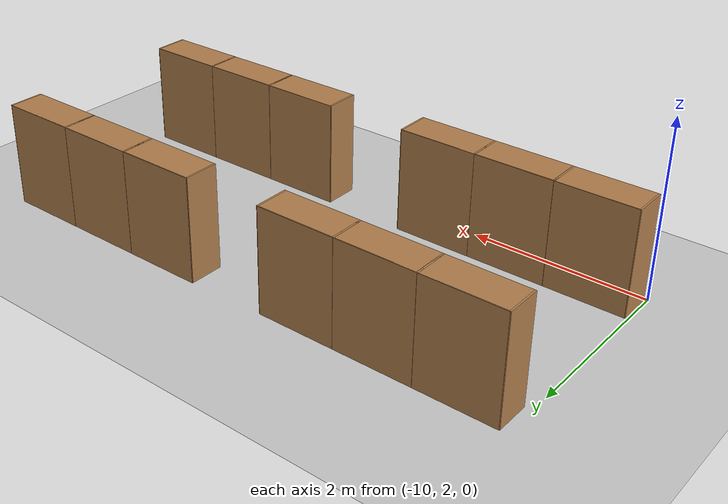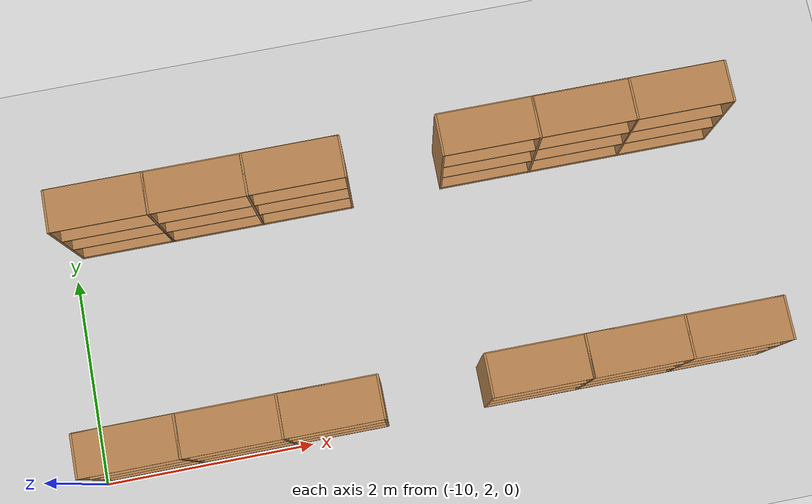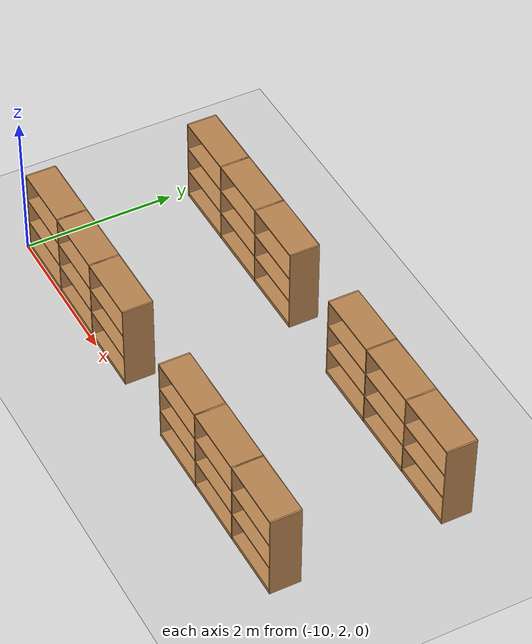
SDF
<sdf version="1.6">
 <world name="default">
  <model name="Bookself-3_0_clone_4">
   <model name="bookshelf_0">
    <static>1</static>
    <link name="link">
     <inertial><mass>1</mass></inertial>
     <collision name="back">
      <pose>0 0.005 0.6 0 -0 0</pose>
      <geometry><box><size>0.9 0.01 1.2</size></box></geometry>
     </collision>
     <visual name="visual1">
      <pose>0 0.005 0.6 0 -0 0</pose>
      <geometry><box><size>0.9 0.01 1.2</size></box></geometry>
      <material>
       <script><uri>file://media/materials/scripts/gazebo.material</uri><name>Gazebo/Wood</name></script>
      </material>
     </visual>
     <collision name="left_side">
      <pose>0.45 -0.195 0.6 0 -0 0</pose>
      <geometry><box><size>0.02 0.4 1.2</size></box></geometry>
     </collision>
     <visual name="visual2">
      <pose>0.45 -0.195 0.6 0 -0 0</pose>
      <geometry><box><size>0.02 0.4 1.2</size></box></geometry>
      <material>
       <script><uri>file://media/materials/scripts/gazebo.material</uri><name>Gazebo/Wood</name></script>
      </material>
     </visual>
     <collision name="right_side">
      <pose>-0.45 -0.195 0.6 0 -0 0</pose>
      <geometry><box><size>0.02 0.4 1.2</size></box></geometry>
     </collision>
     <visual name="visual3">
      <pose>-0.45 -0.195 0.6 0 -0 0</pose>
      <geometry><box><size>0.02 0.4 1.2</size></box></geometry>
      <material>
       <script><uri>file://media/materials/scripts/gazebo.material</uri><name>Gazebo/Wood</name></script>
      </material>
     </visual>
     <collision name="bottom">
      <pose>0 -0.195 0.03 0 -0 0</pose>
      <geometry><box><size>0.88 0.4 0.06</size></box></geometry>
     </collision>
     <visual name="visual4">
      <pose>0 -0.195 0.03 0 -0 0</pose>
      <geometry><box><size>0.88 0.4 0.06</size></box></geometry>
      <material>
       <script><uri>file://media/materials/scripts/gazebo.material</uri><name>Gazebo/Wood</name></script>
      </material>
     </visual>
     <collision name="top">
      <pose>0 -0.195 1.19 0 -0 0</pose>
      <geometry><box><size>0.88 0.4 0.02</size></box></geometry>
     </collision>
     <visual name="visual5">
      <pose>0 -0.195 1.19 0 -0 0</pose>
      <geometry><box><size>0.88 0.4 0.02</size></box></geometry>
      <material>
       <script><uri>file://media/materials/scripts/gazebo.material</uri><name>Gazebo/Wood</name></script>
      </material>
     </visual>
     <collision name="low_shelf">
      <pose>0 -0.195 0.43 0 -0 0</pose>
      <geometry><box><size>0.88 0.4 0.02</size></box></geometry>
     </collision>
     <visual name="visual6">
      <pose>0 -0.195 0.43 0 -0 0</pose>
      <geometry><box><size>0.88 0.4 0.02</size></box></geometry>
      <material>
       <script><uri>file://media/materials/scripts/gazebo.material</uri><name>Gazebo/Wood</name></script>
      </material>
     </visual>
     <collision name="high_shelf">
      <pose>0 -0.195 0.8 0 -0 0</pose>
      <geometry><box><size>0.88 0.4 0.02</size></box></geometry>
     </collision>
     <visual name="visual7">
      <pose>0 -0.195 0.8 0 -0 0</pose>
      <geometry><box><size>0.88 0.4 0.02</size></box></geometry>
      <material>
       <script><uri>file://media/materials/scripts/gazebo.material</uri><name>Gazebo/Wood</name></script>
      </material>
     </visual>
    </link>
    <pose>-0.903039 0 0 0 -0 0</pose>
   </model>
   <model name="bookshelf_1">
    <static>1</static>
    <link name="link">
     <inertial><mass>1</mass></inertial>
     <collision name="back">
      <pose>0 0.005 0.6 0 -0 0</pose>
      <geometry><box><size>0.9 0.01 1.2</size></box></geometry>
     </collision>
     <visual name="visual1">
      <pose>0 0.005 0.6 0 -0 0</pose>
      <geometry><box><size>0.9 0.01 1.2</size></box></geometry>
      <material>
       <script><uri>file://media/materials/scripts/gazebo.material</uri><name>Gazebo/Wood</name></script>
      </material>
     </visual>
     <collision name="left_side">
      <pose>0.45 -0.195 0.6 0 -0 0</pose>
      <geometry><box><size>0.02 0.4 1.2</size></box></geometry>
     </collision>
     <visual name="visual2">
      <pose>0.45 -0.195 0.6 0 -0 0</pose>
      <geometry><box><size>0.02 0.4 1.2</size></box></geometry>
      <material>
       <script><uri>file://media/materials/scripts/gazebo.material</uri><name>Gazebo/Wood</name></script>
      </material>
     </visual>
     <collision name="right_side">
      <pose>-0.45 -0.195 0.6 0 -0 0</pose>
      <geometry><box><size>0.02 0.4 1.2</size></box></geometry>
     </collision>
     <visual name="visual3">
      <pose>-0.45 -0.195 0.6 0 -0 0</pose>
      <geometry><box><size>0.02 0.4 1.2</size></box></geometry>
      <material>
       <script><uri>file://media/materials/scripts/gazebo.material</uri><name>Gazebo/Wood</name></script>
      </material>
     </visual>
     <collision name="bottom">
      <pose>0 -0.195 0.03 0 -0 0</pose>
      <geometry><box><size>0.88 0.4 0.06</size></box></geometry>
     </collision>
     <visual name="visual4">
      <pose>0 -0.195 0.03 0 -0 0</pose>
      <geometry><box><size>0.88 0.4 0.06</size></box></geometry>
      <material>
       <script><uri>file://media/materials/scripts/gazebo.material</uri><name>Gazebo/Wood</name></script>
      </material>
     </visual>
     <collision name="top">
      <pose>0 -0.195 1.19 0 -0 0</pose>
      <geometry><box><size>0.88 0.4 0.02</size></box></geometry>
     </collision>
     <visual name="visual5">
      <pose>0 -0.195 1.19 0 -0 0</pose>
      <geometry><box><size>0.88 0.4 0.02</size></box></geometry>
      <material>
       <script><uri>file://media/materials/scripts/gazebo.material</uri><name>Gazebo/Wood</name></script>
      </material>
     </visual>
     <collision name="low_shelf">
      <pose>0 -0.195 0.43 0 -0 0</pose>
      <geometry><box><size>0.88 0.4 0.02</size></box></geometry>
     </collision>
     <visual name="visual6">
      <pose>0 -0.195 0.43 0 -0 0</pose>
      <geometry><box><size>0.88 0.4 0.02</size></box></geometry>
      <material>
       <script><uri>file://media/materials/scripts/gazebo.material</uri><name>Gazebo/Wood</name></script>
      </material>
     </visual>
     <collision name="high_shelf">
      <pose>0 -0.195 0.8 0 -0 0</pose>
      <geometry><box><size>0.88 0.4 0.02</size></box></geometry>
     </collision>
     <visual name="visual7">
      <pose>0 -0.195 0.8 0 -0 0</pose>
      <geometry><box><size>0.88 0.4 0.02</size></box></geometry>
      <material>
       <script><uri>file://media/materials/scripts/gazebo.material</uri><name>Gazebo/Wood</name></script>
      </material>
     </visual>
    </link>
    <pose>0.000535 0 0 0 -0 0</pose>
   </model>
   <model name="bookshelf_1_clone">
    <static>1</static>
    <link name="link">
     <inertial><mass>1</mass></inertial>
     <collision name="back">
      <pose>0 0.005 0.6 0 -0 0</pose>
      <geometry><box><size>0.9 0.01 1.2</size></box></geometry>
     </collision>
     <visual name="visual1">
      <pose>0 0.005 0.6 0 -0 0</pose>
      <geometry><box><size>0.9 0.01 1.2</size></box></geometry>
      <material>
       <script><uri>file://media/materials/scripts/gazebo.material</uri><name>Gazebo/Wood</name></script>
      </material>
     </visual>
     <collision name="left_side">
      <pose>0.45 -0.195 0.6 0 -0 0</pose>
      <geometry><box><size>0.02 0.4 1.2</size></box></geometry>
     </collision>
     <visual name="visual2">
      <pose>0.45 -0.195 0.6 0 -0 0</pose>
      <geometry><box><size>0.02 0.4 1.2</size></box></geometry>
      <material>
       <script><uri>file://media/materials/scripts/gazebo.material</uri><name>Gazebo/Wood</name></script>
      </material>
     </visual>
     <collision name="right_side">
      <pose>-0.45 -0.195 0.6 0 -0 0</pose>
      <geometry><box><size>0.02 0.4 1.2</size></box></geometry>
     </collision>
     <visual name="visual3">
      <pose>-0.45 -0.195 0.6 0 -0 0</pose>
      <geometry><box><size>0.02 0.4 1.2</size></box></geometry>
      <material>
       <script><uri>file://media/materials/scripts/gazebo.material</uri><name>Gazebo/Wood</name></script>
      </material>
     </visual>
     <collision name="bottom">
      <pose>0 -0.195 0.03 0 -0 0</pose>
      <geometry><box><size>0.88 0.4 0.06</size></box></geometry>
     </collision>
     <visual name="visual4">
      <pose>0 -0.195 0.03 0 -0 0</pose>
      <geometry><box><size>0.88 0.4 0.06</size></box></geometry>
      <material>
       <script><uri>file://media/materials/scripts/gazebo.material</uri><name>Gazebo/Wood</name></script>
      </material>
     </visual>
     <collision name="top">
      <pose>0 -0.195 1.19 0 -0 0</pose>
      <geometry><box><size>0.88 0.4 0.02</size></box></geometry>
     </collision>
     <visual name="visual5">
      <pose>0 -0.195 1.19 0 -0 0</pose>
      <geometry><box><size>0.88 0.4 0.02</size></box></geometry>
      <material>
       <script><uri>file://media/materials/scripts/gazebo.material</uri><name>Gazebo/Wood</name></script>
      </material>
     </visual>
     <collision name="low_shelf">
      <pose>0 -0.195 0.43 0 -0 0</pose>
      <geometry><box><size>0.88 0.4 0.02</size></box></geometry>
     </collision>
     <visual name="visual6">
      <pose>0 -0.195 0.43 0 -0 0</pose>
      <geometry><box><size>0.88 0.4 0.02</size></box></geometry>
      <material>
       <script><uri>file://media/materials/scripts/gazebo.material</uri><name>Gazebo/Wood</name></script>
      </material>
     </visual>
     <collision name="high_shelf">
      <pose>0 -0.195 0.8 0 -0 0</pose>
      <geometry><box><size>0.88 0.4 0.02</size></box></geometry>
     </collision>
     <visual name="visual7">
      <pose>0 -0.195 0.8 0 -0 0</pose>
      <geometry><box><size>0.88 0.4 0.02</size></box></geometry>
      <material>
       <script><uri>file://media/materials/scripts/gazebo.material</uri><name>Gazebo/Wood</name></script>
      </material>
     </visual>
    </link>
    <pose>0.902502 0 0 0 -0 0</pose>
   </model>
   <static>1</static>
   <pose>-4.94744 4.64614 0 0 -0 0</pose>
  </model>
  <model name="Bookself-3_0_clone_5">
   <model name="bookshelf_0">
    <static>1</static>
    <link name="link">
     <inertial><mass>1</mass></inertial>
     <collision name="back">
      <pose>0 0.005 0.6 0 -0 0</pose>
      <geometry><box><size>0.9 0.01 1.2</size></box></geometry>
     </collision>
     <visual name="visual1">
      <pose>0 0.005 0.6 0 -0 0</pose>
      <geometry><box><size>0.9 0.01 1.2</size></box></geometry>
      <material>
       <script><uri>file://media/materials/scripts/gazebo.material</uri><name>Gazebo/Wood</name></script>
      </material>
     </visual>
     <collision name="left_side">
      <pose>0.45 -0.195 0.6 0 -0 0</pose>
      <geometry><box><size>0.02 0.4 1.2</size></box></geometry>
     </collision>
     <visual name="visual2">
      <pose>0.45 -0.195 0.6 0 -0 0</pose>
      <geometry><box><size>0.02 0.4 1.2</size></box></geometry>
      <material>
       <script><uri>file://media/materials/scripts/gazebo.material</uri><name>Gazebo/Wood</name></script>
      </material>
     </visual>
     <collision name="right_side">
      <pose>-0.45 -0.195 0.6 0 -0 0</pose>
      <geometry><box><size>0.02 0.4 1.2</size></box></geometry>
     </collision>
     <visual name="visual3">
      <pose>-0.45 -0.195 0.6 0 -0 0</pose>
      <geometry><box><size>0.02 0.4 1.2</size></box></geometry>
      <material>
       <script><uri>file://media/materials/scripts/gazebo.material</uri><name>Gazebo/Wood</name></script>
      </material>
     </visual>
     <collision name="bottom">
      <pose>0 -0.195 0.03 0 -0 0</pose>
      <geometry><box><size>0.88 0.4 0.06</size></box></geometry>
     </collision>
     <visual name="visual4">
      <pose>0 -0.195 0.03 0 -0 0</pose>
      <geometry><box><size>0.88 0.4 0.06</size></box></geometry>
      <material>
       <script><uri>file://media/materials/scripts/gazebo.material</uri><name>Gazebo/Wood</name></script>
      </material>
     </visual>
     <collision name="top">
      <pose>0 -0.195 1.19 0 -0 0</pose>
      <geometry><box><size>0.88 0.4 0.02</size></box></geometry>
     </collision>
     <visual name="visual5">
      <pose>0 -0.195 1.19 0 -0 0</pose>
      <geometry><box><size>0.88 0.4 0.02</size></box></geometry>
      <material>
       <script><uri>file://media/materials/scripts/gazebo.material</uri><name>Gazebo/Wood</name></script>
      </material>
     </visual>
     <collision name="low_shelf">
      <pose>0 -0.195 0.43 0 -0 0</pose>
      <geometry><box><size>0.88 0.4 0.02</size></box></geometry>
     </collision>
     <visual name="visual6">
      <pose>0 -0.195 0.43 0 -0 0</pose>
      <geometry><box><size>0.88 0.4 0.02</size></box></geometry>
      <material>
       <script><uri>file://media/materials/scripts/gazebo.material</uri><name>Gazebo/Wood</name></script>
      </material>
     </visual>
     <collision name="high_shelf">
      <pose>0 -0.195 0.8 0 -0 0</pose>
      <geometry><box><size>0.88 0.4 0.02</size></box></geometry>
     </collision>
     <visual name="visual7">
      <pose>0 -0.195 0.8 0 -0 0</pose>
      <geometry><box><size>0.88 0.4 0.02</size></box></geometry>
      <material>
       <script><uri>file://media/materials/scripts/gazebo.material</uri><name>Gazebo/Wood</name></script>
      </material>
     </visual>
    </link>
    <pose>-0.903039 0 0 0 -0 0</pose>
   </model>
   <model name="bookshelf_1">
    <static>1</static>
    <link name="link">
     <inertial><mass>1</mass></inertial>
     <collision name="back">
      <pose>0 0.005 0.6 0 -0 0</pose>
      <geometry><box><size>0.9 0.01 1.2</size></box></geometry>
     </collision>
     <visual name="visual1">
      <pose>0 0.005 0.6 0 -0 0</pose>
      <geometry><box><size>0.9 0.01 1.2</size></box></geometry>
      <material>
       <script><uri>file://media/materials/scripts/gazebo.material</uri><name>Gazebo/Wood</name></script>
      </material>
     </visual>
     <collision name="left_side">
      <pose>0.45 -0.195 0.6 0 -0 0</pose>
      <geometry><box><size>0.02 0.4 1.2</size></box></geometry>
     </collision>
     <visual name="visual2">
      <pose>0.45 -0.195 0.6 0 -0 0</pose>
      <geometry><box><size>0.02 0.4 1.2</size></box></geometry>
      <material>
       <script><uri>file://media/materials/scripts/gazebo.material</uri><name>Gazebo/Wood</name></script>
      </material>
     </visual>
     <collision name="right_side">
      <pose>-0.45 -0.195 0.6 0 -0 0</pose>
      <geometry><box><size>0.02 0.4 1.2</size></box></geometry>
     </collision>
     <visual name="visual3">
      <pose>-0.45 -0.195 0.6 0 -0 0</pose>
      <geometry><box><size>0.02 0.4 1.2</size></box></geometry>
      <material>
       <script><uri>file://media/materials/scripts/gazebo.material</uri><name>Gazebo/Wood</name></script>
      </material>
     </visual>
     <collision name="bottom">
      <pose>0 -0.195 0.03 0 -0 0</pose>
      <geometry><box><size>0.88 0.4 0.06</size></box></geometry>
     </collision>
     <visual name="visual4">
      <pose>0 -0.195 0.03 0 -0 0</pose>
      <geometry><box><size>0.88 0.4 0.06</size></box></geometry>
      <material>
       <script><uri>file://media/materials/scripts/gazebo.material</uri><name>Gazebo/Wood</name></script>
      </material>
     </visual>
     <collision name="top">
      <pose>0 -0.195 1.19 0 -0 0</pose>
      <geometry><box><size>0.88 0.4 0.02</size></box></geometry>
     </collision>
     <visual name="visual5">
      <pose>0 -0.195 1.19 0 -0 0</pose>
      <geometry><box><size>0.88 0.4 0.02</size></box></geometry>
      <material>
       <script><uri>file://media/materials/scripts/gazebo.material</uri><name>Gazebo/Wood</name></script>
      </material>
     </visual>
     <collision name="low_shelf">
      <pose>0 -0.195 0.43 0 -0 0</pose>
      <geometry><box><size>0.88 0.4 0.02</size></box></geometry>
     </collision>
     <visual name="visual6">
      <pose>0 -0.195 0.43 0 -0 0</pose>
      <geometry><box><size>0.88 0.4 0.02</size></box></geometry>
      <material>
       <script><uri>file://media/materials/scripts/gazebo.material</uri><name>Gazebo/Wood</name></script>
      </material>
     </visual>
     <collision name="high_shelf">
      <pose>0 -0.195 0.8 0 -0 0</pose>
      <geometry><box><size>0.88 0.4 0.02</size></box></geometry>
     </collision>
     <visual name="visual7">
      <pose>0 -0.195 0.8 0 -0 0</pose>
      <geometry><box><size>0.88 0.4 0.02</size></box></geometry>
      <material>
       <script><uri>file://media/materials/scripts/gazebo.material</uri><name>Gazebo/Wood</name></script>
      </material>
     </visual>
    </link>
    <pose>0.000535 0 0 0 -0 0</pose>
   </model>
   <model name="bookshelf_1_clone">
    <static>1</static>
    <link name="link">
     <inertial><mass>1</mass></inertial>
     <collision name="back">
      <pose>0 0.005 0.6 0 -0 0</pose>
      <geometry><box><size>0.9 0.01 1.2</size></box></geometry>
     </collision>
     <visual name="visual1">
      <pose>0 0.005 0.6 0 -0 0</pose>
      <geometry><box><size>0.9 0.01 1.2</size></box></geometry>
      <material>
       <script><uri>file://media/materials/scripts/gazebo.material</uri><name>Gazebo/Wood</name></script>
      </material>
     </visual>
     <collision name="left_side">
      <pose>0.45 -0.195 0.6 0 -0 0</pose>
      <geometry><box><size>0.02 0.4 1.2</size></box></geometry>
     </collision>
     <visual name="visual2">
      <pose>0.45 -0.195 0.6 0 -0 0</pose>
      <geometry><box><size>0.02 0.4 1.2</size></box></geometry>
      <material>
       <script><uri>file://media/materials/scripts/gazebo.material</uri><name>Gazebo/Wood</name></script>
      </material>
     </visual>
     <collision name="right_side">
      <pose>-0.45 -0.195 0.6 0 -0 0</pose>
      <geometry><box><size>0.02 0.4 1.2</size></box></geometry>
     </collision>
     <visual name="visual3">
      <pose>-0.45 -0.195 0.6 0 -0 0</pose>
      <geometry><box><size>0.02 0.4 1.2</size></box></geometry>
      <material>
       <script><uri>file://media/materials/scripts/gazebo.material</uri><name>Gazebo/Wood</name></script>
      </material>
     </visual>
     <collision name="bottom">
      <pose>0 -0.195 0.03 0 -0 0</pose>
      <geometry><box><size>0.88 0.4 0.06</size></box></geometry>
     </collision>
     <visual name="visual4">
      <pose>0 -0.195 0.03 0 -0 0</pose>
      <geometry><box><size>0.88 0.4 0.06</size></box></geometry>
      <material>
       <script><uri>file://media/materials/scripts/gazebo.material</uri><name>Gazebo/Wood</name></script>
      </material>
     </visual>
     <collision name="top">
      <pose>0 -0.195 1.19 0 -0 0</pose>
      <geometry><box><size>0.88 0.4 0.02</size></box></geometry>
     </collision>
     <visual name="visual5">
      <pose>0 -0.195 1.19 0 -0 0</pose>
      <geometry><box><size>0.88 0.4 0.02</size></box></geometry>
      <material>
       <script><uri>file://media/materials/scripts/gazebo.material</uri><name>Gazebo/Wood</name></script>
      </material>
     </visual>
     <collision name="low_shelf">
      <pose>0 -0.195 0.43 0 -0 0</pose>
      <geometry><box><size>0.88 0.4 0.02</size></box></geometry>
     </collision>
     <visual name="visual6">
      <pose>0 -0.195 0.43 0 -0 0</pose>
      <geometry><box><size>0.88 0.4 0.02</size></box></geometry>
      <material>
       <script><uri>file://media/materials/scripts/gazebo.material</uri><name>Gazebo/Wood</name></script>
      </material>
     </visual>
     <collision name="high_shelf">
      <pose>0 -0.195 0.8 0 -0 0</pose>
      <geometry><box><size>0.88 0.4 0.02</size></box></geometry>
     </collision>
     <visual name="visual7">
      <pose>0 -0.195 0.8 0 -0 0</pose>
      <geometry><box><size>0.88 0.4 0.02</size></box></geometry>
      <material>
       <script><uri>file://media/materials/scripts/gazebo.material</uri><name>Gazebo/Wood</name></script>
      </material>
     </visual>
    </link>
    <pose>0.902502 0 0 0 -0 0</pose>
   </model>
   <static>1</static>
   <pose>-4.94744 2.42399 0 0 -0 0</pose>
  </model>
  <model name="Bookself-3_0_clone_6">
   <model name="bookshelf_0">
    <static>1</static>
    <link name="link">
     <inertial><mass>1</mass></inertial>
     <collision name="back">
      <pose>0 0.005 0.6 0 -0 0</pose>
      <geometry><box><size>0.9 0.01 1.2</size></box></geometry>
     </collision>
     <visual name="visual1">
      <pose>0 0.005 0.6 0 -0 0</pose>
      <geometry><box><size>0.9 0.01 1.2</size></box></geometry>
      <material>
       <script><uri>file://media/materials/scripts/gazebo.material</uri><name>Gazebo/Wood</name></script>
      </material>
     </visual>
     <collision name="left_side">
      <pose>0.45 -0.195 0.6 0 -0 0</pose>
      <geometry><box><size>0.02 0.4 1.2</size></box></geometry>
     </collision>
     <visual name="visual2">
      <pose>0.45 -0.195 0.6 0 -0 0</pose>
      <geometry><box><size>0.02 0.4 1.2</size></box></geometry>
      <material>
       <script><uri>file://media/materials/scripts/gazebo.material</uri><name>Gazebo/Wood</name></script>
      </material>
     </visual>
     <collision name="right_side">
      <pose>-0.45 -0.195 0.6 0 -0 0</pose>
      <geometry><box><size>0.02 0.4 1.2</size></box></geometry>
     </collision>
     <visual name="visual3">
      <pose>-0.45 -0.195 0.6 0 -0 0</pose>
      <geometry><box><size>0.02 0.4 1.2</size></box></geometry>
      <material>
       <script><uri>file://media/materials/scripts/gazebo.material</uri><name>Gazebo/Wood</name></script>
      </material>
     </visual>
     <collision name="bottom">
      <pose>0 -0.195 0.03 0 -0 0</pose>
      <geometry><box><size>0.88 0.4 0.06</size></box></geometry>
     </collision>
     <visual name="visual4">
      <pose>0 -0.195 0.03 0 -0 0</pose>
      <geometry><box><size>0.88 0.4 0.06</size></box></geometry>
      <material>
       <script><uri>file://media/materials/scripts/gazebo.material</uri><name>Gazebo/Wood</name></script>
      </material>
     </visual>
     <collision name="top">
      <pose>0 -0.195 1.19 0 -0 0</pose>
      <geometry><box><size>0.88 0.4 0.02</size></box></geometry>
     </collision>
     <visual name="visual5">
      <pose>0 -0.195 1.19 0 -0 0</pose>
      <geometry><box><size>0.88 0.4 0.02</size></box></geometry>
      <material>
       <script><uri>file://media/materials/scripts/gazebo.material</uri><name>Gazebo/Wood</name></script>
      </material>
     </visual>
     <collision name="low_shelf">
      <pose>0 -0.195 0.43 0 -0 0</pose>
      <geometry><box><size>0.88 0.4 0.02</size></box></geometry>
     </collision>
     <visual name="visual6">
      <pose>0 -0.195 0.43 0 -0 0</pose>
      <geometry><box><size>0.88 0.4 0.02</size></box></geometry>
      <material>
       <script><uri>file://media/materials/scripts/gazebo.material</uri><name>Gazebo/Wood</name></script>
      </material>
     </visual>
     <collision name="high_shelf">
      <pose>0 -0.195 0.8 0 -0 0</pose>
      <geometry><box><size>0.88 0.4 0.02</size></box></geometry>
     </collision>
     <visual name="visual7">
      <pose>0 -0.195 0.8 0 -0 0</pose>
      <geometry><box><size>0.88 0.4 0.02</size></box></geometry>
      <material>
       <script><uri>file://media/materials/scripts/gazebo.material</uri><name>Gazebo/Wood</name></script>
      </material>
     </visual>
    </link>
    <pose>-0.903039 0 0 0 -0 0</pose>
   </model>
   <model name="bookshelf_1">
    <static>1</static>
    <link name="link">
     <inertial><mass>1</mass></inertial>
     <collision name="back">
      <pose>0 0.005 0.6 0 -0 0</pose>
      <geometry><box><size>0.9 0.01 1.2</size></box></geometry>
     </collision>
     <visual name="visual1">
      <pose>0 0.005 0.6 0 -0 0</pose>
      <geometry><box><size>0.9 0.01 1.2</size></box></geometry>
      <material>
       <script><uri>file://media/materials/scripts/gazebo.material</uri><name>Gazebo/Wood</name></script>
      </material>
     </visual>
     <collision name="left_side">
      <pose>0.45 -0.195 0.6 0 -0 0</pose>
      <geometry><box><size>0.02 0.4 1.2</size></box></geometry>
     </collision>
     <visual name="visual2">
      <pose>0.45 -0.195 0.6 0 -0 0</pose>
      <geometry><box><size>0.02 0.4 1.2</size></box></geometry>
      <material>
       <script><uri>file://media/materials/scripts/gazebo.material</uri><name>Gazebo/Wood</name></script>
      </material>
     </visual>
     <collision name="right_side">
      <pose>-0.45 -0.195 0.6 0 -0 0</pose>
      <geometry><box><size>0.02 0.4 1.2</size></box></geometry>
     </collision>
     <visual name="visual3">
      <pose>-0.45 -0.195 0.6 0 -0 0</pose>
      <geometry><box><size>0.02 0.4 1.2</size></box></geometry>
      <material>
       <script><uri>file://media/materials/scripts/gazebo.material</uri><name>Gazebo/Wood</name></script>
      </material>
     </visual>
     <collision name="bottom">
      <pose>0 -0.195 0.03 0 -0 0</pose>
      <geometry><box><size>0.88 0.4 0.06</size></box></geometry>
     </collision>
     <visual name="visual4">
      <pose>0 -0.195 0.03 0 -0 0</pose>
      <geometry><box><size>0.88 0.4 0.06</size></box></geometry>
      <material>
       <script><uri>file://media/materials/scripts/gazebo.material</uri><name>Gazebo/Wood</name></script>
      </material>
     </visual>
     <collision name="top">
      <pose>0 -0.195 1.19 0 -0 0</pose>
      <geometry><box><size>0.88 0.4 0.02</size></box></geometry>
     </collision>
     <visual name="visual5">
      <pose>0 -0.195 1.19 0 -0 0</pose>
      <geometry><box><size>0.88 0.4 0.02</size></box></geometry>
      <material>
       <script><uri>file://media/materials/scripts/gazebo.material</uri><name>Gazebo/Wood</name></script>
      </material>
     </visual>
     <collision name="low_shelf">
      <pose>0 -0.195 0.43 0 -0 0</pose>
      <geometry><box><size>0.88 0.4 0.02</size></box></geometry>
     </collision>
     <visual name="visual6">
      <pose>0 -0.195 0.43 0 -0 0</pose>
      <geometry><box><size>0.88 0.4 0.02</size></box></geometry>
      <material>
       <script><uri>file://media/materials/scripts/gazebo.material</uri><name>Gazebo/Wood</name></script>
      </material>
     </visual>
     <collision name="high_shelf">
      <pose>0 -0.195 0.8 0 -0 0</pose>
      <geometry><box><size>0.88 0.4 0.02</size></box></geometry>
     </collision>
     <visual name="visual7">
      <pose>0 -0.195 0.8 0 -0 0</pose>
      <geometry><box><size>0.88 0.4 0.02</size></box></geometry>
      <material>
       <script><uri>file://media/materials/scripts/gazebo.material</uri><name>Gazebo/Wood</name></script>
      </material>
     </visual>
    </link>
    <pose>0.000535 0 0 0 -0 0</pose>
   </model>
   <model name="bookshelf_1_clone">
    <static>1</static>
    <link name="link">
     <inertial><mass>1</mass></inertial>
     <collision name="back">
      <pose>0 0.005 0.6 0 -0 0</pose>
      <geometry><box><size>0.9 0.01 1.2</size></box></geometry>
     </collision>
     <visual name="visual1">
      <pose>0 0.005 0.6 0 -0 0</pose>
      <geometry><box><size>0.9 0.01 1.2</size></box></geometry>
      <material>
       <script><uri>file://media/materials/scripts/gazebo.material</uri><name>Gazebo/Wood</name></script>
      </material>
     </visual>
     <collision name="left_side">
      <pose>0.45 -0.195 0.6 0 -0 0</pose>
      <geometry><box><size>0.02 0.4 1.2</size></box></geometry>
     </collision>
     <visual name="visual2">
      <pose>0.45 -0.195 0.6 0 -0 0</pose>
      <geometry><box><size>0.02 0.4 1.2</size></box></geometry>
      <material>
       <script><uri>file://media/materials/scripts/gazebo.material</uri><name>Gazebo/Wood</name></script>
      </material>
     </visual>
     <collision name="right_side">
      <pose>-0.45 -0.195 0.6 0 -0 0</pose>
      <geometry><box><size>0.02 0.4 1.2</size></box></geometry>
     </collision>
     <visual name="visual3">
      <pose>-0.45 -0.195 0.6 0 -0 0</pose>
      <geometry><box><size>0.02 0.4 1.2</size></box></geometry>
      <material>
       <script><uri>file://media/materials/scripts/gazebo.material</uri><name>Gazebo/Wood</name></script>
      </material>
     </visual>
     <collision name="bottom">
      <pose>0 -0.195 0.03 0 -0 0</pose>
      <geometry><box><size>0.88 0.4 0.06</size></box></geometry>
     </collision>
     <visual name="visual4">
      <pose>0 -0.195 0.03 0 -0 0</pose>
      <geometry><box><size>0.88 0.4 0.06</size></box></geometry>
      <material>
       <script><uri>file://media/materials/scripts/gazebo.material</uri><name>Gazebo/Wood</name></script>
      </material>
     </visual>
     <collision name="top">
      <pose>0 -0.195 1.19 0 -0 0</pose>
      <geometry><box><size>0.88 0.4 0.02</size></box></geometry>
     </collision>
     <visual name="visual5">
      <pose>0 -0.195 1.19 0 -0 0</pose>
      <geometry><box><size>0.88 0.4 0.02</size></box></geometry>
      <material>
       <script><uri>file://media/materials/scripts/gazebo.material</uri><name>Gazebo/Wood</name></script>
      </material>
     </visual>
     <collision name="low_shelf">
      <pose>0 -0.195 0.43 0 -0 0</pose>
      <geometry><box><size>0.88 0.4 0.02</size></box></geometry>
     </collision>
     <visual name="visual6">
      <pose>0 -0.195 0.43 0 -0 0</pose>
      <geometry><box><size>0.88 0.4 0.02</size></box></geometry>
      <material>
       <script><uri>file://media/materials/scripts/gazebo.material</uri><name>Gazebo/Wood</name></script>
      </material>
     </visual>
     <collision name="high_shelf">
      <pose>0 -0.195 0.8 0 -0 0</pose>
      <geometry><box><size>0.88 0.4 0.02</size></box></geometry>
     </collision>
     <visual name="visual7">
      <pose>0 -0.195 0.8 0 -0 0</pose>
      <geometry><box><size>0.88 0.4 0.02</size></box></geometry>
      <material>
       <script><uri>file://media/materials/scripts/gazebo.material</uri><name>Gazebo/Wood</name></script>
      </material>
     </visual>
    </link>
    <pose>0.902502 0 0 0 -0 0</pose>
   </model>
   <static>1</static>
   <pose>-8.55319 4.62124 0 0 -0 0</pose>
  </model>
  <model name="Bookself-3_0_clone_7">
   <model name="bookshelf_0">
    <static>1</static>
    <link name="link">
     <inertial><mass>1</mass></inertial>
     <collision name="back">
      <pose>0 0.005 0.6 0 -0 0</pose>
      <geometry><box><size>0.9 0.01 1.2</size></box></geometry>
     </collision>
     <visual name="visual1">
      <pose>0 0.005 0.6 0 -0 0</pose>
      <geometry><box><size>0.9 0.01 1.2</size></box></geometry>
      <material>
       <script><uri>file://media/materials/scripts/gazebo.material</uri><name>Gazebo/Wood</name></script>
      </material>
     </visual>
     <collision name="left_side">
      <pose>0.45 -0.195 0.6 0 -0 0</pose>
      <geometry><box><size>0.02 0.4 1.2</size></box></geometry>
     </collision>
     <visual name="visual2">
      <pose>0.45 -0.195 0.6 0 -0 0</pose>
      <geometry><box><size>0.02 0.4 1.2</size></box></geometry>
      <material>
       <script><uri>file://media/materials/scripts/gazebo.material</uri><name>Gazebo/Wood</name></script>
      </material>
     </visual>
     <collision name="right_side">
      <pose>-0.45 -0.195 0.6 0 -0 0</pose>
      <geometry><box><size>0.02 0.4 1.2</size></box></geometry>
     </collision>
     <visual name="visual3">
      <pose>-0.45 -0.195 0.6 0 -0 0</pose>
      <geometry><box><size>0.02 0.4 1.2</size></box></geometry>
      <material>
       <script><uri>file://media/materials/scripts/gazebo.material</uri><name>Gazebo/Wood</name></script>
      </material>
     </visual>
     <collision name="bottom">
      <pose>0 -0.195 0.03 0 -0 0</pose>
      <geometry><box><size>0.88 0.4 0.06</size></box></geometry>
     </collision>
     <visual name="visual4">
      <pose>0 -0.195 0.03 0 -0 0</pose>
      <geometry><box><size>0.88 0.4 0.06</size></box></geometry>
      <material>
       <script><uri>file://media/materials/scripts/gazebo.material</uri><name>Gazebo/Wood</name></script>
      </material>
     </visual>
     <collision name="top">
      <pose>0 -0.195 1.19 0 -0 0</pose>
      <geometry><box><size>0.88 0.4 0.02</size></box></geometry>
     </collision>
     <visual name="visual5">
      <pose>0 -0.195 1.19 0 -0 0</pose>
      <geometry><box><size>0.88 0.4 0.02</size></box></geometry>
      <material>
       <script><uri>file://media/materials/scripts/gazebo.material</uri><name>Gazebo/Wood</name></script>
      </material>
     </visual>
     <collision name="low_shelf">
      <pose>0 -0.195 0.43 0 -0 0</pose>
      <geometry><box><size>0.88 0.4 0.02</size></box></geometry>
     </collision>
     <visual name="visual6">
      <pose>0 -0.195 0.43 0 -0 0</pose>
      <geometry><box><size>0.88 0.4 0.02</size></box></geometry>
      <material>
       <script><uri>file://media/materials/scripts/gazebo.material</uri><name>Gazebo/Wood</name></script>
      </material>
     </visual>
     <collision name="high_shelf">
      <pose>0 -0.195 0.8 0 -0 0</pose>
      <geometry><box><size>0.88 0.4 0.02</size></box></geometry>
     </collision>
     <visual name="visual7">
      <pose>0 -0.195 0.8 0 -0 0</pose>
      <geometry><box><size>0.88 0.4 0.02</size></box></geometry>
      <material>
       <script><uri>file://media/materials/scripts/gazebo.material</uri><name>Gazebo/Wood</name></script>
      </material>
     </visual>
    </link>
    <pose>-0.903039 0 0 0 -0 0</pose>
   </model>
   <model name="bookshelf_1">
    <static>1</static>
    <link name="link">
     <inertial><mass>1</mass></inertial>
     <collision name="back">
      <pose>0 0.005 0.6 0 -0 0</pose>
      <geometry><box><size>0.9 0.01 1.2</size></box></geometry>
     </collision>
     <visual name="visual1">
      <pose>0 0.005 0.6 0 -0 0</pose>
      <geometry><box><size>0.9 0.01 1.2</size></box></geometry>
      <material>
       <script><uri>file://media/materials/scripts/gazebo.material</uri><name>Gazebo/Wood</name></script>
      </material>
     </visual>
     <collision name="left_side">
      <pose>0.45 -0.195 0.6 0 -0 0</pose>
      <geometry><box><size>0.02 0.4 1.2</size></box></geometry>
     </collision>
     <visual name="visual2">
      <pose>0.45 -0.195 0.6 0 -0 0</pose>
      <geometry><box><size>0.02 0.4 1.2</size></box></geometry>
      <material>
       <script><uri>file://media/materials/scripts/gazebo.material</uri><name>Gazebo/Wood</name></script>
      </material>
     </visual>
     <collision name="right_side">
      <pose>-0.45 -0.195 0.6 0 -0 0</pose>
      <geometry><box><size>0.02 0.4 1.2</size></box></geometry>
     </collision>
     <visual name="visual3">
      <pose>-0.45 -0.195 0.6 0 -0 0</pose>
      <geometry><box><size>0.02 0.4 1.2</size></box></geometry>
      <material>
       <script><uri>file://media/materials/scripts/gazebo.material</uri><name>Gazebo/Wood</name></script>
      </material>
     </visual>
     <collision name="bottom">
      <pose>0 -0.195 0.03 0 -0 0</pose>
      <geometry><box><size>0.88 0.4 0.06</size></box></geometry>
     </collision>
     <visual name="visual4">
      <pose>0 -0.195 0.03 0 -0 0</pose>
      <geometry><box><size>0.88 0.4 0.06</size></box></geometry>
      <material>
       <script><uri>file://media/materials/scripts/gazebo.material</uri><name>Gazebo/Wood</name></script>
      </material>
     </visual>
     <collision name="top">
      <pose>0 -0.195 1.19 0 -0 0</pose>
      <geometry><box><size>0.88 0.4 0.02</size></box></geometry>
     </collision>
     <visual name="visual5">
      <pose>0 -0.195 1.19 0 -0 0</pose>
      <geometry><box><size>0.88 0.4 0.02</size></box></geometry>
      <material>
       <script><uri>file://media/materials/scripts/gazebo.material</uri><name>Gazebo/Wood</name></script>
      </material>
     </visual>
     <collision name="low_shelf">
      <pose>0 -0.195 0.43 0 -0 0</pose>
      <geometry><box><size>0.88 0.4 0.02</size></box></geometry>
     </collision>
     <visual name="visual6">
      <pose>0 -0.195 0.43 0 -0 0</pose>
      <geometry><box><size>0.88 0.4 0.02</size></box></geometry>
      <material>
       <script><uri>file://media/materials/scripts/gazebo.material</uri><name>Gazebo/Wood</name></script>
      </material>
     </visual>
     <collision name="high_shelf">
      <pose>0 -0.195 0.8 0 -0 0</pose>
      <geometry><box><size>0.88 0.4 0.02</size></box></geometry>
     </collision>
     <visual name="visual7">
      <pose>0 -0.195 0.8 0 -0 0</pose>
      <geometry><box><size>0.88 0.4 0.02</size></box></geometry>
      <material>
       <script><uri>file://media/materials/scripts/gazebo.material</uri><name>Gazebo/Wood</name></script>
      </material>
     </visual>
    </link>
    <pose>0.000535 0 0 0 -0 0</pose>
   </model>
   <model name="bookshelf_1_clone">
    <static>1</static>
    <link name="link">
     <inertial><mass>1</mass></inertial>
     <collision name="back">
      <pose>0 0.005 0.6 0 -0 0</pose>
      <geometry><box><size>0.9 0.01 1.2</size></box></geometry>
     </collision>
     <visual name="visual1">
      <pose>0 0.005 0.6 0 -0 0</pose>
      <geometry><box><size>0.9 0.01 1.2</size></box></geometry>
      <material>
       <script><uri>file://media/materials/scripts/gazebo.material</uri><name>Gazebo/Wood</name></script>
      </material>
     </visual>
     <collision name="left_side">
      <pose>0.45 -0.195 0.6 0 -0 0</pose>
      <geometry><box><size>0.02 0.4 1.2</size></box></geometry>
     </collision>
     <visual name="visual2">
      <pose>0.45 -0.195 0.6 0 -0 0</pose>
      <geometry><box><size>0.02 0.4 1.2</size></box></geometry>
      <material>
       <script><uri>file://media/materials/scripts/gazebo.material</uri><name>Gazebo/Wood</name></script>
      </material>
     </visual>
     <collision name="right_side">
      <pose>-0.45 -0.195 0.6 0 -0 0</pose>
      <geometry><box><size>0.02 0.4 1.2</size></box></geometry>
     </collision>
     <visual name="visual3">
      <pose>-0.45 -0.195 0.6 0 -0 0</pose>
      <geometry><box><size>0.02 0.4 1.2</size></box></geometry>
      <material>
       <script><uri>file://media/materials/scripts/gazebo.material</uri><name>Gazebo/Wood</name></script>
      </material>
     </visual>
     <collision name="bottom">
      <pose>0 -0.195 0.03 0 -0 0</pose>
      <geometry><box><size>0.88 0.4 0.06</size></box></geometry>
     </collision>
     <visual name="visual4">
      <pose>0 -0.195 0.03 0 -0 0</pose>
      <geometry><box><size>0.88 0.4 0.06</size></box></geometry>
      <material>
       <script><uri>file://media/materials/scripts/gazebo.material</uri><name>Gazebo/Wood</name></script>
      </material>
     </visual>
     <collision name="top">
      <pose>0 -0.195 1.19 0 -0 0</pose>
      <geometry><box><size>0.88 0.4 0.02</size></box></geometry>
     </collision>
     <visual name="visual5">
      <pose>0 -0.195 1.19 0 -0 0</pose>
      <geometry><box><size>0.88 0.4 0.02</size></box></geometry>
      <material>
       <script><uri>file://media/materials/scripts/gazebo.material</uri><name>Gazebo/Wood</name></script>
      </material>
     </visual>
     <collision name="low_shelf">
      <pose>0 -0.195 0.43 0 -0 0</pose>
      <geometry><box><size>0.88 0.4 0.02</size></box></geometry>
     </collision>
     <visual name="visual6">
      <pose>0 -0.195 0.43 0 -0 0</pose>
      <geometry><box><size>0.88 0.4 0.02</size></box></geometry>
      <material>
       <script><uri>file://media/materials/scripts/gazebo.material</uri><name>Gazebo/Wood</name></script>
      </material>
     </visual>
     <collision name="high_shelf">
      <pose>0 -0.195 0.8 0 -0 0</pose>
      <geometry><box><size>0.88 0.4 0.02</size></box></geometry>
     </collision>
     <visual name="visual7">
      <pose>0 -0.195 0.8 0 -0 0</pose>
      <geometry><box><size>0.88 0.4 0.02</size></box></geometry>
      <material>
       <script><uri>file://media/materials/scripts/gazebo.material</uri><name>Gazebo/Wood</name></script>
      </material>
     </visual>
    </link>
    <pose>0.902502 0 0 0 -0 0</pose>
   </model>
   <static>1</static>
   <pose>-8.60951 2.42394 0 0 -0 0</pose>
  </model>
  <model name="ground_plane">
   <static>1</static>
   <link name="link">
    <collision name="collision">
     <geometry><plane><normal>0 0 1</normal><size>100 100</size></plane></geometry>
     <surface><friction><ode><mu>100</mu><mu2>50</mu2></ode></friction></surface>
    </collision>
    <visual name="visual">
     <cast_shadows>0</cast_shadows>
     <geometry><plane><normal>0 0 1</normal><size>100 100</size></plane></geometry>
     <material>
      <script><uri>file://media/materials/scripts/gazebo.material</uri><name>Gazebo/Grey</name></script>
     </material>
    </visual>
   </link>
   <pose>1.79627 -1.63715 0 0 -0 0</pose>
  </model>
 </world>
</sdf>
